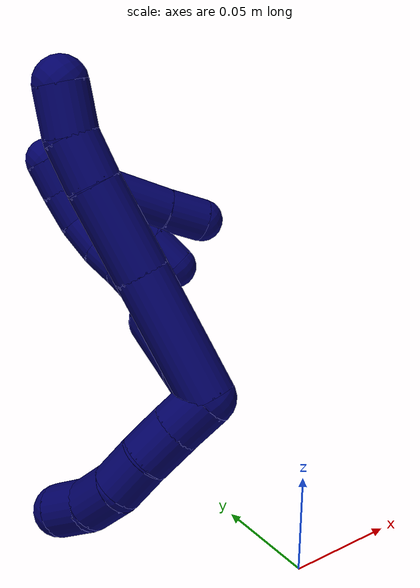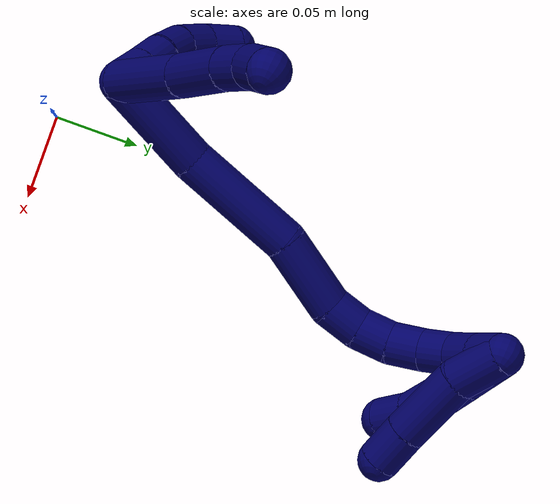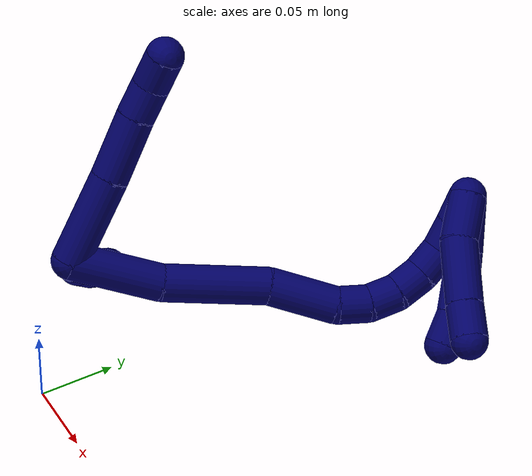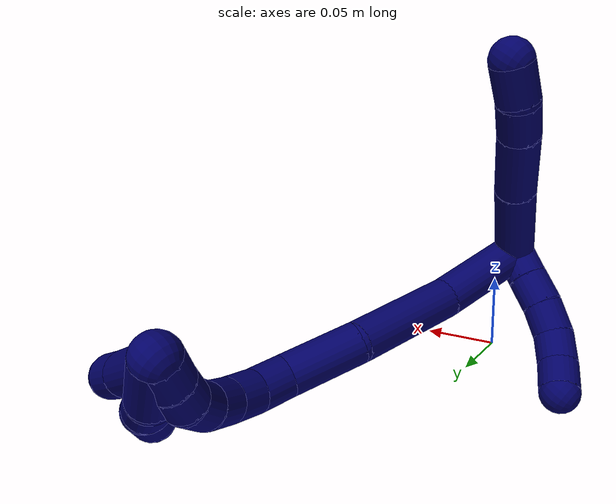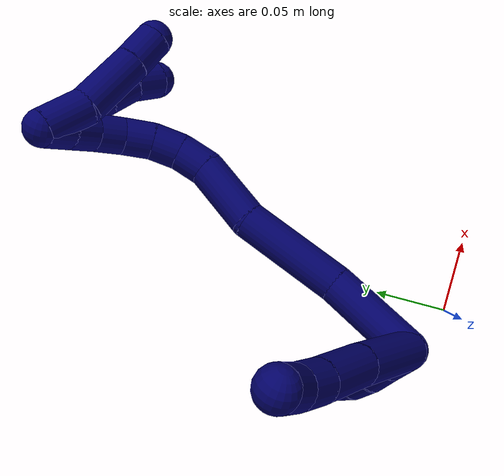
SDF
<sdf version="1.7">
 <world name="default">
  <model name="7">
   <static>0</static>
   <link name="7">
    <collision name="collision-cylinder-e_1_2_8">
     <pose>-0.010026 0.027921 0.006389 -1.34583 -0.336719 0.269293</pose>
     <geometry><cylinder><radius>0.0125</radius><length>0.060693</length></cylinder></geometry>
     <surface>
      <friction><ode><mu>1.16</mu><mu2>1.16</mu2><slip1>0</slip1><slip2>0</slip2></ode></friction>
      <contact><ode><kp>1e+06</kp><kd>1</kd><max_vel>0</max_vel><min_depth>0.001</min_depth></ode></contact>
     </surface>
    </collision>
    <visual name="visual-cylinder-e_1_2_8">
     <pose>-0.010026 0.027921 0.006389 -1.34583 -0.336719 0.269293</pose>
     <geometry><cylinder><radius>0.0125</radius><length>0.060693</length></cylinder></geometry>
     <material><ambient>0.003922 0 0.403922 1</ambient></material>
    </visual>
    <collision name="collision-cylinder-e_2_8_9">
     <pose>-0.028037 0.075521 0.017129 -1.35324 -0.377194 0.304194</pose>
     <geometry><cylinder><radius>0.0125</radius><length>0.043359</length></cylinder></geometry>
     <surface>
      <friction><ode><mu>1.16</mu><mu2>1.16</mu2><slip1>0</slip1><slip2>0</slip2></ode></friction>
      <contact><ode><kp>1e+06</kp><kd>1</kd><max_vel>0</max_vel><min_depth>0.001</min_depth></ode></contact>
     </surface>
    </collision>
    <visual name="visual-cylinder-e_2_8_9">
     <pose>-0.028037 0.075521 0.017129 -1.35324 -0.377194 0.304194</pose>
     <geometry><cylinder><radius>0.0125</radius><length>0.043359</length></cylinder></geometry>
     <material><ambient>0.003922 0 0.403922 1</ambient></material>
    </visual>
    <collision name="collision-cylinder-e_3_9_10">
     <pose>-0.039825 0.105576 0.02441 -1.29556 -0.339173 0.257707</pose>
     <geometry><cylinder><radius>0.0125</radius><length>0.022863</length></cylinder></geometry>
     <surface>
      <friction><ode><mu>1.16</mu><mu2>1.16</mu2><slip1>0</slip1><slip2>0</slip2></ode></friction>
      <contact><ode><kp>1e+06</kp><kd>1</kd><max_vel>0</max_vel><min_depth>0.001</min_depth></ode></contact>
     </surface>
    </collision>
    <visual name="visual-cylinder-e_3_9_10">
     <pose>-0.039825 0.105576 0.02441 -1.29556 -0.339173 0.257707</pose>
     <geometry><cylinder><radius>0.0125</radius><length>0.022863</length></cylinder></geometry>
     <material><ambient>0.003922 0 0.403922 1</ambient></material>
    </visual>
    <collision name="collision-cylinder-e_4_10_6">
     <pose>-0.048111 0.125071 0.032813 -1.03026 -0.398811 0.227823</pose>
     <geometry><cylinder><radius>0.0125</radius><length>0.023085</length></cylinder></geometry>
     <surface>
      <friction><ode><mu>1.16</mu><mu2>1.16</mu2><slip1>0</slip1><slip2>0</slip2></ode></friction>
      <contact><ode><kp>1e+06</kp><kd>1</kd><max_vel>0</max_vel><min_depth>0.001</min_depth></ode></contact>
     </surface>
    </collision>
    <visual name="visual-cylinder-e_4_10_6">
     <pose>-0.048111 0.125071 0.032813 -1.03026 -0.398811 0.227823</pose>
     <geometry><cylinder><radius>0.0125</radius><length>0.023085</length></cylinder></geometry>
     <material><ambient>0.003922 0 0.403922 1</ambient></material>
    </visual>
    <collision name="collision-cylinder-e_1_2_11">
     <pose>0.004203 0.000633 -0.009052 -3.07177 0.4338 -2.82722</pose>
     <geometry><cylinder><radius>0.0125</radius><length>0.02</length></cylinder></geometry>
     <surface>
      <friction><ode><mu>1.16</mu><mu2>1.16</mu2><slip1>0</slip1><slip2>0</slip2></ode></friction>
      <contact><ode><kp>1e+06</kp><kd>1</kd><max_vel>0</max_vel><min_depth>0.001</min_depth></ode></contact>
     </surface>
    </collision>
    <visual name="visual-cylinder-e_1_2_11">
     <pose>0.004203 0.000633 -0.009052 -3.07177 0.4338 -2.82722</pose>
     <geometry><cylinder><radius>0.0125</radius><length>0.02</length></cylinder></geometry>
     <material><ambient>0.003922 0 0.403922 1</ambient></material>
    </visual>
    <collision name="collision-cylinder-e_2_11_12">
     <pose>0.012463 0.001581 -0.027238 -3.10713 0.417752 -2.97937</pose>
     <geometry><cylinder><radius>0.0125</radius><length>0.02</length></cylinder></geometry>
     <surface>
      <friction><ode><mu>1.16</mu><mu2>1.16</mu2><slip1>0</slip1><slip2>0</slip2></ode></friction>
      <contact><ode><kp>1e+06</kp><kd>1</kd><max_vel>0</max_vel><min_depth>0.001</min_depth></ode></contact>
     </surface>
    </collision>
    <visual name="visual-cylinder-e_2_11_12">
     <pose>0.012463 0.001581 -0.027238 -3.10713 0.417752 -2.97937</pose>
     <geometry><cylinder><radius>0.0125</radius><length>0.02</length></cylinder></geometry>
     <material><ambient>0.003922 0 0.403922 1</ambient></material>
    </visual>
    <collision name="collision-cylinder-e_3_12_13">
     <pose>0.02168 0.001998 -0.044938 -3.12965 0.542146 -3.09861</pose>
     <geometry><cylinder><radius>0.0125</radius><length>0.02</length></cylinder></geometry>
     <surface>
      <friction><ode><mu>1.16</mu><mu2>1.16</mu2><slip1>0</slip1><slip2>0</slip2></ode></friction>
      <contact><ode><kp>1e+06</kp><kd>1</kd><max_vel>0</max_vel><min_depth>0.001</min_depth></ode></contact>
     </surface>
    </collision>
    <visual name="visual-cylinder-e_3_12_13">
     <pose>0.02168 0.001998 -0.044938 -3.12965 0.542146 -3.09861</pose>
     <geometry><cylinder><radius>0.0125</radius><length>0.02</length></cylinder></geometry>
     <material><ambient>0.003922 0 0.403922 1</ambient></material>
    </visual>
    <collision name="collision-cylinder-e_4_13_14">
     <pose>0.033524 0.004492 -0.060546 -2.81424 0.732075 -2.32795</pose>
     <geometry><cylinder><radius>0.0125</radius><length>0.02</length></cylinder></geometry>
     <surface>
      <friction><ode><mu>1.16</mu><mu2>1.16</mu2><slip1>0</slip1><slip2>0</slip2></ode></friction>
      <contact><ode><kp>1e+06</kp><kd>1</kd><max_vel>0</max_vel><min_depth>0.001</min_depth></ode></contact>
     </surface>
    </collision>
    <visual name="visual-cylinder-e_4_13_14">
     <pose>0.033524 0.004492 -0.060546 -2.81424 0.732075 -2.32795</pose>
     <geometry><cylinder><radius>0.0125</radius><length>0.02</length></cylinder></geometry>
     <material><ambient>0.003922 0 0.403922 1</ambient></material>
    </visual>
    <collision name="collision-cylinder-e_5_14_5">
     <pose>0.046782 0.011712 -0.073374 -2.44608 0.717371 -1.60447</pose>
     <geometry><cylinder><radius>0.0125</radius><length>0.02</length></cylinder></geometry>
     <surface>
      <friction><ode><mu>1.16</mu><mu2>1.16</mu2><slip1>0</slip1><slip2>0</slip2></ode></friction>
      <contact><ode><kp>1e+06</kp><kd>1</kd><max_vel>0</max_vel><min_depth>0.001</min_depth></ode></contact>
     </surface>
    </collision>
    <visual name="visual-cylinder-e_5_14_5">
     <pose>0.046782 0.011712 -0.073374 -2.44608 0.717371 -1.60447</pose>
     <geometry><cylinder><radius>0.0125</radius><length>0.02</length></cylinder></geometry>
     <material><ambient>0.003922 0 0.403922 1</ambient></material>
    </visual>
    <collision name="collision-cylinder-e_1_2_15">
     <pose>0.027264 0.013291 0.004292 -1.25842 1.09738 -0.837326</pose>
     <geometry><cylinder><radius>0.0125</radius><length>0.061267</length></cylinder></geometry>
     <surface>
      <friction><ode><mu>1.16</mu><mu2>1.16</mu2><slip1>0</slip1><slip2>0</slip2></ode></friction>
      <contact><ode><kp>1e+06</kp><kd>1</kd><max_vel>0</max_vel><min_depth>0.001</min_depth></ode></contact>
     </surface>
    </collision>
    <visual name="visual-cylinder-e_1_2_15">
     <pose>0.027264 0.013291 0.004292 -1.25842 1.09738 -0.837326</pose>
     <geometry><cylinder><radius>0.0125</radius><length>0.061267</length></cylinder></geometry>
     <material><ambient>0.003922 0 0.403922 1</ambient></material>
    </visual>
    <collision name="collision-cylinder-e_2_15_16">
     <pose>0.082039 0.048107 0.014027 -1.32314 0.891787 -0.712599</pose>
     <geometry><cylinder><radius>0.0125</radius><length>0.070705</length></cylinder></geometry>
     <surface>
      <friction><ode><mu>1.16</mu><mu2>1.16</mu2><slip1>0</slip1><slip2>0</slip2></ode></friction>
      <contact><ode><kp>1e+06</kp><kd>1</kd><max_vel>0</max_vel><min_depth>0.001</min_depth></ode></contact>
     </surface>
    </collision>
    <visual name="visual-cylinder-e_2_15_16">
     <pose>0.082039 0.048107 0.014027 -1.32314 0.891787 -0.712599</pose>
     <geometry><cylinder><radius>0.0125</radius><length>0.070705</length></cylinder></geometry>
     <material><ambient>0.003922 0 0.403922 1</ambient></material>
    </visual>
    <collision name="collision-cylinder-e_3_16_17">
     <pose>0.129541 0.078854 0.026081 -0.948811 1.05449 -0.58105</pose>
     <geometry><cylinder><radius>0.0125</radius><length>0.045974</length></cylinder></geometry>
     <surface>
      <friction><ode><mu>1.16</mu><mu2>1.16</mu2><slip1>0</slip1><slip2>0</slip2></ode></friction>
      <contact><ode><kp>1e+06</kp><kd>1</kd><max_vel>0</max_vel><min_depth>0.001</min_depth></ode></contact>
     </surface>
    </collision>
    <visual name="visual-cylinder-e_3_16_17">
     <pose>0.129541 0.078854 0.026081 -0.948811 1.05449 -0.58105</pose>
     <geometry><cylinder><radius>0.0125</radius><length>0.045974</length></cylinder></geometry>
     <material><ambient>0.003922 0 0.403922 1</ambient></material>
    </visual>
    <collision name="collision-cylinder-e_4_17_18">
     <pose>0.157253 0.095246 0.034162 -1.36864 0.812221 -0.67481</pose>
     <geometry><cylinder><radius>0.0125</radius><length>0.021276</length></cylinder></geometry>
     <surface>
      <friction><ode><mu>1.16</mu><mu2>1.16</mu2><slip1>0</slip1><slip2>0</slip2></ode></friction>
      <contact><ode><kp>1e+06</kp><kd>1</kd><max_vel>0</max_vel><min_depth>0.001</min_depth></ode></contact>
     </surface>
    </collision>
    <visual name="visual-cylinder-e_4_17_18">
     <pose>0.157253 0.095246 0.034162 -1.36864 0.812221 -0.67481</pose>
     <geometry><cylinder><radius>0.0125</radius><length>0.021276</length></cylinder></geometry>
     <material><ambient>0.003922 0 0.403922 1</ambient></material>
    </visual>
    <collision name="collision-cylinder-e_5_18_19">
     <pose>0.169945 0.111135 0.036312 -1.49288 0.516745 -0.479497</pose>
     <geometry><cylinder><radius>0.0125</radius><length>0.020122</length></cylinder></geometry>
     <surface>
      <friction><ode><mu>1.16</mu><mu2>1.16</mu2><slip1>0</slip1><slip2>0</slip2></ode></friction>
      <contact><ode><kp>1e+06</kp><kd>1</kd><max_vel>0</max_vel><min_depth>0.001</min_depth></ode></contact>
     </surface>
    </collision>
    <visual name="visual-cylinder-e_5_18_19">
     <pose>0.169945 0.111135 0.036312 -1.49288 0.516745 -0.479497</pose>
     <geometry><cylinder><radius>0.0125</radius><length>0.020122</length></cylinder></geometry>
     <material><ambient>0.003922 0 0.403922 1</ambient></material>
    </visual>
    <collision name="collision-cylinder-e_6_19_20">
     <pose>0.177532 0.129773 0.036688 -1.60161 0.257855 -0.265831</pose>
     <geometry><cylinder><radius>0.0125</radius><length>0.020522</length></cylinder></geometry>
     <surface>
      <friction><ode><mu>1.16</mu><mu2>1.16</mu2><slip1>0</slip1><slip2>0</slip2></ode></friction>
      <contact><ode><kp>1e+06</kp><kd>1</kd><max_vel>0</max_vel><min_depth>0.001</min_depth></ode></contact>
     </surface>
    </collision>
    <visual name="visual-cylinder-e_6_19_20">
     <pose>0.177532 0.129773 0.036688 -1.60161 0.257855 -0.265831</pose>
     <geometry><cylinder><radius>0.0125</radius><length>0.020522</length></cylinder></geometry>
     <material><ambient>0.003922 0 0.403922 1</ambient></material>
    </visual>
    <collision name="collision-cylinder-e_7_20_21">
     <pose>0.179996 0.149721 0.037051 -1.5042 -0.015204 0.014224</pose>
     <geometry><cylinder><radius>0.0125</radius><length>0.020108</length></cylinder></geometry>
     <surface>
      <friction><ode><mu>1.16</mu><mu2>1.16</mu2><slip1>0</slip1><slip2>0</slip2></ode></friction>
      <contact><ode><kp>1e+06</kp><kd>1</kd><max_vel>0</max_vel><min_depth>0.001</min_depth></ode></contact>
     </surface>
    </collision>
    <visual name="visual-cylinder-e_7_20_21">
     <pose>0.179996 0.149721 0.037051 -1.5042 -0.015204 0.014224</pose>
     <geometry><cylinder><radius>0.0125</radius><length>0.020108</length></cylinder></geometry>
     <material><ambient>0.003922 0 0.403922 1</ambient></material>
    </visual>
    <collision name="collision-cylinder-e_8_21_22">
     <pose>0.176908 0.169158 0.039496 -1.38421 -0.297483 0.247147</pose>
     <geometry><cylinder><radius>0.0125</radius><length>0.020025</length></cylinder></geometry>
     <surface>
      <friction><ode><mu>1.16</mu><mu2>1.16</mu2><slip1>0</slip1><slip2>0</slip2></ode></friction>
      <contact><ode><kp>1e+06</kp><kd>1</kd><max_vel>0</max_vel><min_depth>0.001</min_depth></ode></contact>
     </surface>
    </collision>
    <visual name="visual-cylinder-e_8_21_22">
     <pose>0.176908 0.169158 0.039496 -1.38421 -0.297483 0.247147</pose>
     <geometry><cylinder><radius>0.0125</radius><length>0.020025</length></cylinder></geometry>
     <material><ambient>0.003922 0 0.403922 1</ambient></material>
    </visual>
    <collision name="collision-cylinder-e_9_22_1">
     <pose>0.170431 0.187662 0.043441 -1.33673 -0.362143 0.287126</pose>
     <geometry><cylinder><radius>0.0125</radius><length>0.020001</length></cylinder></geometry>
     <surface>
      <friction><ode><mu>1.16</mu><mu2>1.16</mu2><slip1>0</slip1><slip2>0</slip2></ode></friction>
      <contact><ode><kp>1e+06</kp><kd>1</kd><max_vel>0</max_vel><min_depth>0.001</min_depth></ode></contact>
     </surface>
    </collision>
    <visual name="visual-cylinder-e_9_22_1">
     <pose>0.170431 0.187662 0.043441 -1.33673 -0.362143 0.287126</pose>
     <geometry><cylinder><radius>0.0125</radius><length>0.020001</length></cylinder></geometry>
     <material><ambient>0.003922 0 0.403922 1</ambient></material>
    </visual>
    <collision name="collision-cylinder-e_1_1_23">
     <pose>0.177852 0.182204 0.046831 1.48707 0.643916 0.595264</pose>
     <geometry><cylinder><radius>0.0125</radius><length>0.036526</length></cylinder></geometry>
     <surface>
      <friction><ode><mu>1.16</mu><mu2>1.16</mu2><slip1>0</slip1><slip2>0</slip2></ode></friction>
      <contact><ode><kp>1e+06</kp><kd>1</kd><max_vel>0</max_vel><min_depth>0.001</min_depth></ode></contact>
     </surface>
    </collision>
    <visual name="visual-cylinder-e_1_1_23">
     <pose>0.177852 0.182204 0.046831 1.48707 0.643916 0.595264</pose>
     <geometry><cylinder><radius>0.0125</radius><length>0.036526</length></cylinder></geometry>
     <material><ambient>0.003922 0 0.403922 1</ambient></material>
    </visual>
    <collision name="collision-cylinder-e_2_23_24">
     <pose>0.193471 0.159232 0.051082 1.22535 0.479831 0.34057</pose>
     <geometry><cylinder><radius>0.0125</radius><length>0.020168</length></cylinder></geometry>
     <surface>
      <friction><ode><mu>1.16</mu><mu2>1.16</mu2><slip1>0</slip1><slip2>0</slip2></ode></friction>
      <contact><ode><kp>1e+06</kp><kd>1</kd><max_vel>0</max_vel><min_depth>0.001</min_depth></ode></contact>
     </surface>
    </collision>
    <visual name="visual-cylinder-e_2_23_24">
     <pose>0.193471 0.159232 0.051082 1.22535 0.479831 0.34057</pose>
     <geometry><cylinder><radius>0.0125</radius><length>0.020168</length></cylinder></geometry>
     <material><ambient>0.003922 0 0.403922 1</ambient></material>
    </visual>
    <collision name="collision-cylinder-e_3_24_25">
     <pose>0.20189 0.141331 0.058569 1.13135 0.34489 0.220267</pose>
     <geometry><cylinder><radius>0.0125</radius><length>0.02227</length></cylinder></geometry>
     <surface>
      <friction><ode><mu>1.16</mu><mu2>1.16</mu2><slip1>0</slip1><slip2>0</slip2></ode></friction>
      <contact><ode><kp>1e+06</kp><kd>1</kd><max_vel>0</max_vel><min_depth>0.001</min_depth></ode></contact>
     </surface>
    </collision>
    <visual name="visual-cylinder-e_3_24_25">
     <pose>0.20189 0.141331 0.058569 1.13135 0.34489 0.220267</pose>
     <geometry><cylinder><radius>0.0125</radius><length>0.02227</length></cylinder></geometry>
     <material><ambient>0.003922 0 0.403922 1</ambient></material>
    </visual>
    <collision name="collision-cylinder-e_4_25_4">
     <pose>0.20862 0.121795 0.063913 1.48293 0.28578 0.261998</pose>
     <geometry><cylinder><radius>0.0125</radius><length>0.021036</length></cylinder></geometry>
     <surface>
      <friction><ode><mu>1.16</mu><mu2>1.16</mu2><slip1>0</slip1><slip2>0</slip2></ode></friction>
      <contact><ode><kp>1e+06</kp><kd>1</kd><max_vel>0</max_vel><min_depth>0.001</min_depth></ode></contact>
     </surface>
    </collision>
    <visual name="visual-cylinder-e_4_25_4">
     <pose>0.20862 0.121795 0.063913 1.48293 0.28578 0.261998</pose>
     <geometry><cylinder><radius>0.0125</radius><length>0.021036</length></cylinder></geometry>
     <material><ambient>0.003922 0 0.403922 1</ambient></material>
    </visual>
    <collision name="collision-cylinder-e_1_1_26">
     <pose>0.171853 0.183119 0.051538 1.16078 0.322234 0.212344</pose>
     <geometry><cylinder><radius>0.0125</radius><length>0.031359</length></cylinder></geometry>
     <surface>
      <friction><ode><mu>1.16</mu><mu2>1.16</mu2><slip1>0</slip1><slip2>0</slip2></ode></friction>
      <contact><ode><kp>1e+06</kp><kd>1</kd><max_vel>0</max_vel><min_depth>0.001</min_depth></ode></contact>
     </surface>
    </collision>
    <visual name="visual-cylinder-e_1_1_26">
     <pose>0.171853 0.183119 0.051538 1.16078 0.322234 0.212344</pose>
     <geometry><cylinder><radius>0.0125</radius><length>0.031359</length></cylinder></geometry>
     <material><ambient>0.003922 0 0.403922 1</ambient></material>
    </visual>
    <collision name="collision-cylinder-e_2_26_27">
     <pose>0.187227 0.153835 0.069305 0.922973 0.487781 0.246249</pose>
     <geometry><cylinder><radius>0.0125</radius><length>0.044418</length></cylinder></geometry>
     <surface>
      <friction><ode><mu>1.16</mu><mu2>1.16</mu2><slip1>0</slip1><slip2>0</slip2></ode></friction>
      <contact><ode><kp>1e+06</kp><kd>1</kd><max_vel>0</max_vel><min_depth>0.001</min_depth></ode></contact>
     </surface>
    </collision>
    <visual name="visual-cylinder-e_2_26_27">
     <pose>0.187227 0.153835 0.069305 0.922973 0.487781 0.246249</pose>
     <geometry><cylinder><radius>0.0125</radius><length>0.044418</length></cylinder></geometry>
     <material><ambient>0.003922 0 0.403922 1</ambient></material>
    </visual>
    <collision name="collision-cylinder-e_3_27_3">
     <pose>0.203425 0.130081 0.08803 0.866884 0.498316 0.234431</pose>
     <geometry><cylinder><radius>0.0125</radius><length>0.024223</length></cylinder></geometry>
     <surface>
      <friction><ode><mu>1.16</mu><mu2>1.16</mu2><slip1>0</slip1><slip2>0</slip2></ode></friction>
      <contact><ode><kp>1e+06</kp><kd>1</kd><max_vel>0</max_vel><min_depth>0.001</min_depth></ode></contact>
     </surface>
    </collision>
    <visual name="visual-cylinder-e_3_27_3">
     <pose>0.203425 0.130081 0.08803 0.866884 0.498316 0.234431</pose>
     <geometry><cylinder><radius>0.0125</radius><length>0.024223</length></cylinder></geometry>
     <material><ambient>0.003922 0 0.403922 1</ambient></material>
    </visual>
    <collision name="collision-sphere-3">
     <pose>0.209213 0.121971 0.094915 0 -0 0</pose>
     <geometry><sphere><radius>0.0125</radius></sphere></geometry>
     <surface>
      <friction><ode><mu>1.16</mu><mu2>1.16</mu2><slip1>0</slip1><slip2>0</slip2></ode></friction>
      <contact><ode><kp>1e+06</kp><kd>1</kd><max_vel>0</max_vel><min_depth>0.001</min_depth></ode></contact>
     </surface>
    </collision>
    <visual name="visual-sphere-3">
     <pose>0.209213 0.121971 0.094915 0 -0 0</pose>
     <geometry><sphere><radius>0.0125</radius></sphere></geometry>
     <material><ambient>0.003922 0 0.403922 1</ambient></material>
    </visual>
    <collision name="collision-sphere-27">
     <pose>0.197636 0.138191 0.081144 0 -0 0</pose>
     <geometry><sphere><radius>0.0125</radius></sphere></geometry>
     <surface>
      <friction><ode><mu>1.16</mu><mu2>1.16</mu2><slip1>0</slip1><slip2>0</slip2></ode></friction>
      <contact><ode><kp>1e+06</kp><kd>1</kd><max_vel>0</max_vel><min_depth>0.001</min_depth></ode></contact>
     </surface>
    </collision>
    <visual name="visual-sphere-27">
     <pose>0.197636 0.138191 0.081144 0 -0 0</pose>
     <geometry><sphere><radius>0.0125</radius></sphere></geometry>
     <material><ambient>0.003922 0 0.403922 1</ambient></material>
    </visual>
    <collision name="collision-sphere-26">
     <pose>0.176819 0.169479 0.057466 0 -0 0</pose>
     <geometry><sphere><radius>0.0125</radius></sphere></geometry>
     <surface>
      <friction><ode><mu>1.16</mu><mu2>1.16</mu2><slip1>0</slip1><slip2>0</slip2></ode></friction>
      <contact><ode><kp>1e+06</kp><kd>1</kd><max_vel>0</max_vel><min_depth>0.001</min_depth></ode></contact>
     </surface>
    </collision>
    <visual name="visual-sphere-26">
     <pose>0.176819 0.169479 0.057466 0 -0 0</pose>
     <geometry><sphere><radius>0.0125</radius></sphere></geometry>
     <material><ambient>0.003922 0 0.403922 1</ambient></material>
    </visual>
    <collision name="collision-sphere-4">
     <pose>0.211585 0.111743 0.064798 0 -0 0</pose>
     <geometry><sphere><radius>0.0125</radius></sphere></geometry>
     <surface>
      <friction><ode><mu>1.16</mu><mu2>1.16</mu2><slip1>0</slip1><slip2>0</slip2></ode></friction>
      <contact><ode><kp>1e+06</kp><kd>1</kd><max_vel>0</max_vel><min_depth>0.001</min_depth></ode></contact>
     </surface>
    </collision>
    <visual name="visual-sphere-4">
     <pose>0.211585 0.111743 0.064798 0 -0 0</pose>
     <geometry><sphere><radius>0.0125</radius></sphere></geometry>
     <material><ambient>0.003922 0 0.403922 1</ambient></material>
    </visual>
    <collision name="collision-sphere-25">
     <pose>0.205655 0.131848 0.063027 0 -0 0</pose>
     <geometry><sphere><radius>0.0125</radius></sphere></geometry>
     <surface>
      <friction><ode><mu>1.16</mu><mu2>1.16</mu2><slip1>0</slip1><slip2>0</slip2></ode></friction>
      <contact><ode><kp>1e+06</kp><kd>1</kd><max_vel>0</max_vel><min_depth>0.001</min_depth></ode></contact>
     </surface>
    </collision>
    <visual name="visual-sphere-25">
     <pose>0.205655 0.131848 0.063027 0 -0 0</pose>
     <geometry><sphere><radius>0.0125</radius></sphere></geometry>
     <material><ambient>0.003922 0 0.403922 1</ambient></material>
    </visual>
    <collision name="collision-sphere-24">
     <pose>0.198126 0.150815 0.054111 0 -0 0</pose>
     <geometry><sphere><radius>0.0125</radius></sphere></geometry>
     <surface>
      <friction><ode><mu>1.16</mu><mu2>1.16</mu2><slip1>0</slip1><slip2>0</slip2></ode></friction>
      <contact><ode><kp>1e+06</kp><kd>1</kd><max_vel>0</max_vel><min_depth>0.001</min_depth></ode></contact>
     </surface>
    </collision>
    <visual name="visual-sphere-24">
     <pose>0.198126 0.150815 0.054111 0 -0 0</pose>
     <geometry><sphere><radius>0.0125</radius></sphere></geometry>
     <material><ambient>0.003922 0 0.403922 1</ambient></material>
    </visual>
    <collision name="collision-sphere-23">
     <pose>0.188816 0.167649 0.048053 0 -0 0</pose>
     <geometry><sphere><radius>0.0125</radius></sphere></geometry>
     <surface>
      <friction><ode><mu>1.16</mu><mu2>1.16</mu2><slip1>0</slip1><slip2>0</slip2></ode></friction>
      <contact><ode><kp>1e+06</kp><kd>1</kd><max_vel>0</max_vel><min_depth>0.001</min_depth></ode></contact>
     </surface>
    </collision>
    <visual name="visual-sphere-23">
     <pose>0.188816 0.167649 0.048053 0 -0 0</pose>
     <geometry><sphere><radius>0.0125</radius></sphere></geometry>
     <material><ambient>0.003922 0 0.403922 1</ambient></material>
    </visual>
    <collision name="collision-sphere-1">
     <pose>0.166888 0.196758 0.04561 0 -0 0</pose>
     <geometry><sphere><radius>0.0125</radius></sphere></geometry>
     <surface>
      <friction><ode><mu>1.16</mu><mu2>1.16</mu2><slip1>0</slip1><slip2>0</slip2></ode></friction>
      <contact><ode><kp>1e+06</kp><kd>1</kd><max_vel>0</max_vel><min_depth>0.001</min_depth></ode></contact>
     </surface>
    </collision>
    <visual name="visual-sphere-1">
     <pose>0.166888 0.196758 0.04561 0 -0 0</pose>
     <geometry><sphere><radius>0.0125</radius></sphere></geometry>
     <material><ambient>0.003922 0 0.403922 1</ambient></material>
    </visual>
    <collision name="collision-sphere-22">
     <pose>0.173974 0.178565 0.041272 0 -0 0</pose>
     <geometry><sphere><radius>0.0125</radius></sphere></geometry>
     <surface>
      <friction><ode><mu>1.16</mu><mu2>1.16</mu2><slip1>0</slip1><slip2>0</slip2></ode></friction>
      <contact><ode><kp>1e+06</kp><kd>1</kd><max_vel>0</max_vel><min_depth>0.001</min_depth></ode></contact>
     </surface>
    </collision>
    <visual name="visual-sphere-22">
     <pose>0.173974 0.178565 0.041272 0 -0 0</pose>
     <geometry><sphere><radius>0.0125</radius></sphere></geometry>
     <material><ambient>0.003922 0 0.403922 1</ambient></material>
    </visual>
    <collision name="collision-sphere-21">
     <pose>0.179843 0.159752 0.03772 0 -0 0</pose>
     <geometry><sphere><radius>0.0125</radius></sphere></geometry>
     <surface>
      <friction><ode><mu>1.16</mu><mu2>1.16</mu2><slip1>0</slip1><slip2>0</slip2></ode></friction>
      <contact><ode><kp>1e+06</kp><kd>1</kd><max_vel>0</max_vel><min_depth>0.001</min_depth></ode></contact>
     </surface>
    </collision>
    <visual name="visual-sphere-21">
     <pose>0.179843 0.159752 0.03772 0 -0 0</pose>
     <geometry><sphere><radius>0.0125</radius></sphere></geometry>
     <material><ambient>0.003922 0 0.403922 1</ambient></material>
    </visual>
    <collision name="collision-sphere-11">
     <pose>0.008406 0.001266 -0.018103 0 -0 0</pose>
     <geometry><sphere><radius>0.0125</radius></sphere></geometry>
     <surface>
      <friction><ode><mu>1.16</mu><mu2>1.16</mu2><slip1>0</slip1><slip2>0</slip2></ode></friction>
      <contact><ode><kp>1e+06</kp><kd>1</kd><max_vel>0</max_vel><min_depth>0.001</min_depth></ode></contact>
     </surface>
    </collision>
    <visual name="visual-sphere-11">
     <pose>0.008406 0.001266 -0.018103 0 -0 0</pose>
     <geometry><sphere><radius>0.0125</radius></sphere></geometry>
     <material><ambient>0.003922 0 0.403922 1</ambient></material>
    </visual>
    <collision name="collision-sphere-6">
     <pose>-0.052593 0.134191 0.038287 0 -0 0</pose>
     <geometry><sphere><radius>0.0125</radius></sphere></geometry>
     <surface>
      <friction><ode><mu>1.16</mu><mu2>1.16</mu2><slip1>0</slip1><slip2>0</slip2></ode></friction>
      <contact><ode><kp>1e+06</kp><kd>1</kd><max_vel>0</max_vel><min_depth>0.001</min_depth></ode></contact>
     </surface>
    </collision>
    <visual name="visual-sphere-6">
     <pose>-0.052593 0.134191 0.038287 0 -0 0</pose>
     <geometry><sphere><radius>0.0125</radius></sphere></geometry>
     <material><ambient>0.003922 0 0.403922 1</ambient></material>
    </visual>
    <collision name="collision-sphere-10">
     <pose>-0.043629 0.11595 0.02734 0 -0 0</pose>
     <geometry><sphere><radius>0.0125</radius></sphere></geometry>
     <surface>
      <friction><ode><mu>1.16</mu><mu2>1.16</mu2><slip1>0</slip1><slip2>0</slip2></ode></friction>
      <contact><ode><kp>1e+06</kp><kd>1</kd><max_vel>0</max_vel><min_depth>0.001</min_depth></ode></contact>
     </surface>
    </collision>
    <visual name="visual-sphere-10">
     <pose>-0.043629 0.11595 0.02734 0 -0 0</pose>
     <geometry><sphere><radius>0.0125</radius></sphere></geometry>
     <material><ambient>0.003922 0 0.403922 1</ambient></material>
    </visual>
    <collision name="collision-sphere-9">
     <pose>-0.036022 0.095202 0.02148 0 -0 0</pose>
     <geometry><sphere><radius>0.0125</radius></sphere></geometry>
     <surface>
      <friction><ode><mu>1.16</mu><mu2>1.16</mu2><slip1>0</slip1><slip2>0</slip2></ode></friction>
      <contact><ode><kp>1e+06</kp><kd>1</kd><max_vel>0</max_vel><min_depth>0.001</min_depth></ode></contact>
     </surface>
    </collision>
    <visual name="visual-sphere-9">
     <pose>-0.036022 0.095202 0.02148 0 -0 0</pose>
     <geometry><sphere><radius>0.0125</radius></sphere></geometry>
     <material><ambient>0.003922 0 0.403922 1</ambient></material>
    </visual>
    <collision name="collision-sphere-2">
     <geometry><sphere><radius>0.0125</radius></sphere></geometry>
     <surface>
      <friction><ode><mu>1.16</mu><mu2>1.16</mu2><slip1>0</slip1><slip2>0</slip2></ode></friction>
      <contact><ode><kp>1e+06</kp><kd>1</kd><max_vel>0</max_vel><min_depth>0.001</min_depth></ode></contact>
     </surface>
    </collision>
    <visual name="visual-sphere-2">
     <geometry><sphere><radius>0.0125</radius></sphere></geometry>
     <material><ambient>0.003922 0 0.403922 1</ambient></material>
    </visual>
    <collision name="collision-sphere-19">
     <pose>0.174916 0.119856 0.036993 0 -0 0</pose>
     <geometry><sphere><radius>0.0125</radius></sphere></geometry>
     <surface>
      <friction><ode><mu>1.16</mu><mu2>1.16</mu2><slip1>0</slip1><slip2>0</slip2></ode></friction>
      <contact><ode><kp>1e+06</kp><kd>1</kd><max_vel>0</max_vel><min_depth>0.001</min_depth></ode></contact>
     </surface>
    </collision>
    <visual name="visual-sphere-19">
     <pose>0.174916 0.119856 0.036993 0 -0 0</pose>
     <geometry><sphere><radius>0.0125</radius></sphere></geometry>
     <material><ambient>0.003922 0 0.403922 1</ambient></material>
    </visual>
    <collision name="collision-sphere-8">
     <pose>-0.020052 0.055841 0.012779 0 -0 0</pose>
     <geometry><sphere><radius>0.0125</radius></sphere></geometry>
     <surface>
      <friction><ode><mu>1.16</mu><mu2>1.16</mu2><slip1>0</slip1><slip2>0</slip2></ode></friction>
      <contact><ode><kp>1e+06</kp><kd>1</kd><max_vel>0</max_vel><min_depth>0.001</min_depth></ode></contact>
     </surface>
    </collision>
    <visual name="visual-sphere-8">
     <pose>-0.020052 0.055841 0.012779 0 -0 0</pose>
     <geometry><sphere><radius>0.0125</radius></sphere></geometry>
     <material><ambient>0.003922 0 0.403922 1</ambient></material>
    </visual>
    <collision name="collision-sphere-12">
     <pose>0.016521 0.001896 -0.036373 0 -0 0</pose>
     <geometry><sphere><radius>0.0125</radius></sphere></geometry>
     <surface>
      <friction><ode><mu>1.16</mu><mu2>1.16</mu2><slip1>0</slip1><slip2>0</slip2></ode></friction>
      <contact><ode><kp>1e+06</kp><kd>1</kd><max_vel>0</max_vel><min_depth>0.001</min_depth></ode></contact>
     </surface>
    </collision>
    <visual name="visual-sphere-12">
     <pose>0.016521 0.001896 -0.036373 0 -0 0</pose>
     <geometry><sphere><radius>0.0125</radius></sphere></geometry>
     <material><ambient>0.003922 0 0.403922 1</ambient></material>
    </visual>
    <collision name="collision-sphere-13">
     <pose>0.02684 0.002101 -0.053503 0 -0 0</pose>
     <geometry><sphere><radius>0.0125</radius></sphere></geometry>
     <surface>
      <friction><ode><mu>1.16</mu><mu2>1.16</mu2><slip1>0</slip1><slip2>0</slip2></ode></friction>
      <contact><ode><kp>1e+06</kp><kd>1</kd><max_vel>0</max_vel><min_depth>0.001</min_depth></ode></contact>
     </surface>
    </collision>
    <visual name="visual-sphere-13">
     <pose>0.02684 0.002101 -0.053503 0 -0 0</pose>
     <geometry><sphere><radius>0.0125</radius></sphere></geometry>
     <material><ambient>0.003922 0 0.403922 1</ambient></material>
    </visual>
    <collision name="collision-sphere-14">
     <pose>0.040208 0.006884 -0.067589 0 -0 0</pose>
     <geometry><sphere><radius>0.0125</radius></sphere></geometry>
     <surface>
      <friction><ode><mu>1.16</mu><mu2>1.16</mu2><slip1>0</slip1><slip2>0</slip2></ode></friction>
      <contact><ode><kp>1e+06</kp><kd>1</kd><max_vel>0</max_vel><min_depth>0.001</min_depth></ode></contact>
     </surface>
    </collision>
    <visual name="visual-sphere-14">
     <pose>0.040208 0.006884 -0.067589 0 -0 0</pose>
     <geometry><sphere><radius>0.0125</radius></sphere></geometry>
     <material><ambient>0.003922 0 0.403922 1</ambient></material>
    </visual>
    <collision name="collision-sphere-5">
     <pose>0.053356 0.016541 -0.079159 0 -0 0</pose>
     <geometry><sphere><radius>0.0125</radius></sphere></geometry>
     <surface>
      <friction><ode><mu>1.16</mu><mu2>1.16</mu2><slip1>0</slip1><slip2>0</slip2></ode></friction>
      <contact><ode><kp>1e+06</kp><kd>1</kd><max_vel>0</max_vel><min_depth>0.001</min_depth></ode></contact>
     </surface>
    </collision>
    <visual name="visual-sphere-5">
     <pose>0.053356 0.016541 -0.079159 0 -0 0</pose>
     <geometry><sphere><radius>0.0125</radius></sphere></geometry>
     <material><ambient>0.003922 0 0.403922 1</ambient></material>
    </visual>
    <collision name="collision-sphere-15">
     <pose>0.054528 0.026582 0.008585 0 -0 0</pose>
     <geometry><sphere><radius>0.0125</radius></sphere></geometry>
     <surface>
      <friction><ode><mu>1.16</mu><mu2>1.16</mu2><slip1>0</slip1><slip2>0</slip2></ode></friction>
      <contact><ode><kp>1e+06</kp><kd>1</kd><max_vel>0</max_vel><min_depth>0.001</min_depth></ode></contact>
     </surface>
    </collision>
    <visual name="visual-sphere-15">
     <pose>0.054528 0.026582 0.008585 0 -0 0</pose>
     <geometry><sphere><radius>0.0125</radius></sphere></geometry>
     <material><ambient>0.003922 0 0.403922 1</ambient></material>
    </visual>
    <collision name="collision-sphere-16">
     <pose>0.109551 0.069631 0.019469 0 -0 0</pose>
     <geometry><sphere><radius>0.0125</radius></sphere></geometry>
     <surface>
      <friction><ode><mu>1.16</mu><mu2>1.16</mu2><slip1>0</slip1><slip2>0</slip2></ode></friction>
      <contact><ode><kp>1e+06</kp><kd>1</kd><max_vel>0</max_vel><min_depth>0.001</min_depth></ode></contact>
     </surface>
    </collision>
    <visual name="visual-sphere-16">
     <pose>0.109551 0.069631 0.019469 0 -0 0</pose>
     <geometry><sphere><radius>0.0125</radius></sphere></geometry>
     <material><ambient>0.003922 0 0.403922 1</ambient></material>
    </visual>
    <collision name="collision-sphere-17">
     <pose>0.149532 0.088077 0.032693 0 -0 0</pose>
     <geometry><sphere><radius>0.0125</radius></sphere></geometry>
     <surface>
      <friction><ode><mu>1.16</mu><mu2>1.16</mu2><slip1>0</slip1><slip2>0</slip2></ode></friction>
      <contact><ode><kp>1e+06</kp><kd>1</kd><max_vel>0</max_vel><min_depth>0.001</min_depth></ode></contact>
     </surface>
    </collision>
    <visual name="visual-sphere-17">
     <pose>0.149532 0.088077 0.032693 0 -0 0</pose>
     <geometry><sphere><radius>0.0125</radius></sphere></geometry>
     <material><ambient>0.003922 0 0.403922 1</ambient></material>
    </visual>
    <collision name="collision-sphere-18">
     <pose>0.164974 0.102414 0.035632 0 -0 0</pose>
     <geometry><sphere><radius>0.0125</radius></sphere></geometry>
     <surface>
      <friction><ode><mu>1.16</mu><mu2>1.16</mu2><slip1>0</slip1><slip2>0</slip2></ode></friction>
      <contact><ode><kp>1e+06</kp><kd>1</kd><max_vel>0</max_vel><min_depth>0.001</min_depth></ode></contact>
     </surface>
    </collision>
    <visual name="visual-sphere-18">
     <pose>0.164974 0.102414 0.035632 0 -0 0</pose>
     <geometry><sphere><radius>0.0125</radius></sphere></geometry>
     <material><ambient>0.003922 0 0.403922 1</ambient></material>
    </visual>
    <collision name="collision-sphere-20">
     <pose>0.180149 0.13969 0.036382 0 -0 0</pose>
     <geometry><sphere><radius>0.0125</radius></sphere></geometry>
     <surface>
      <friction><ode><mu>1.16</mu><mu2>1.16</mu2><slip1>0</slip1><slip2>0</slip2></ode></friction>
      <contact><ode><kp>1e+06</kp><kd>1</kd><max_vel>0</max_vel><min_depth>0.001</min_depth></ode></contact>
     </surface>
    </collision>
    <visual name="visual-sphere-20">
     <pose>0.180149 0.13969 0.036382 0 -0 0</pose>
     <geometry><sphere><radius>0.0125</radius></sphere></geometry>
     <material><ambient>0.003922 0 0.403922 1</ambient></material>
    </visual>
    <inertial>
     <pose>0.094466 0.089199 0.023238 0 -0 0</pose>
     <mass>0.75</mass>
     <inertia>
      <ixx>8.9e-05</ixx>
      <ixy>0</ixy>
      <ixz>0</ixz>
      <iyy>8.4e-05</iyy>
      <iyz>0</iyz>
      <izz>-0.000105</izz>
     </inertia>
    </inertial>
   </link>
   <pose>-0.024791 0.035946 0.081944 0.798109 0.789197 0.876131</pose>
  </model>
 </world>
</sdf>
